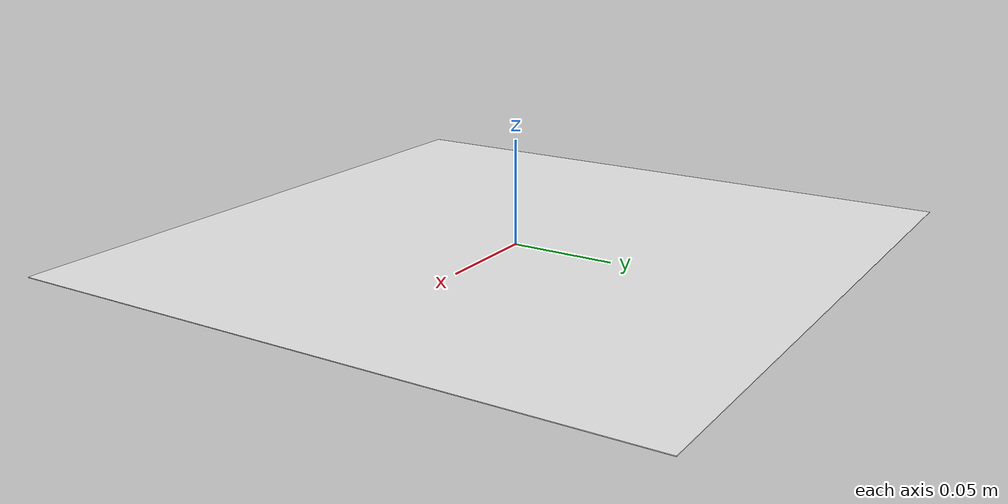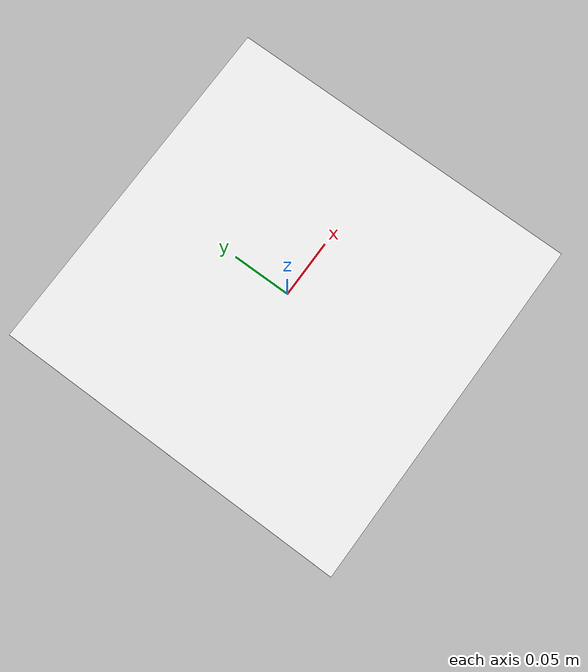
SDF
<?xml version="1.0" encoding="UTF-8"?>
<sdf version='1.7'>
  <model name='arucotag'>
    <static>true</static>
    <pose>0 0 0.001 0 0 0</pose>
    <link name='base'>
      <visual name='base_visual'>
        <geometry>
          <plane>
            <normal>0 0 1</normal>
            <size>0.305 0.305</size>
          </plane>
        </geometry>
        <material>
          <diffuse>1 1 1 1</diffuse>
          <specular>0.4 0.4 0.4 1</specular>
          <pbr>
            <metal>
              <albedo_map>model://6-pixel_marker/materials/arucotag.png</albedo_map>
            </metal>
          </pbr>
        </material>
      </visual>
    </link>
  </model>
</sdf>
